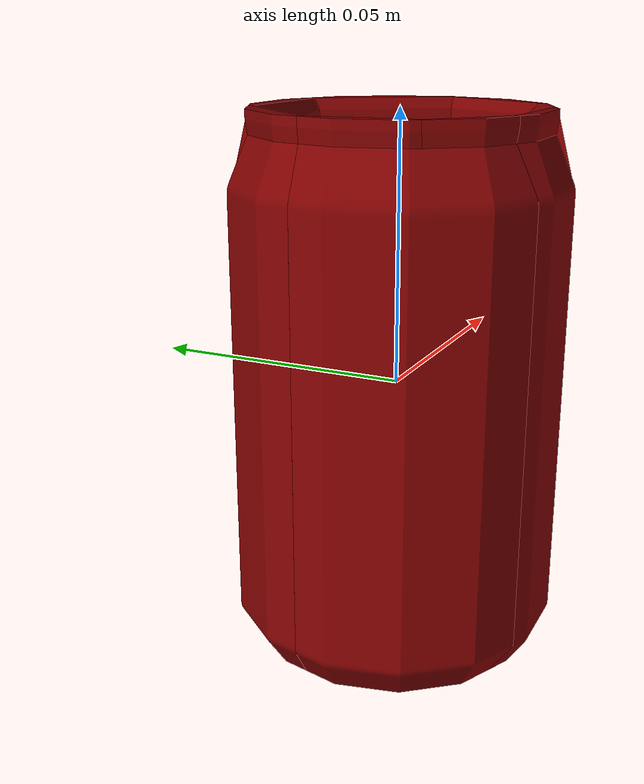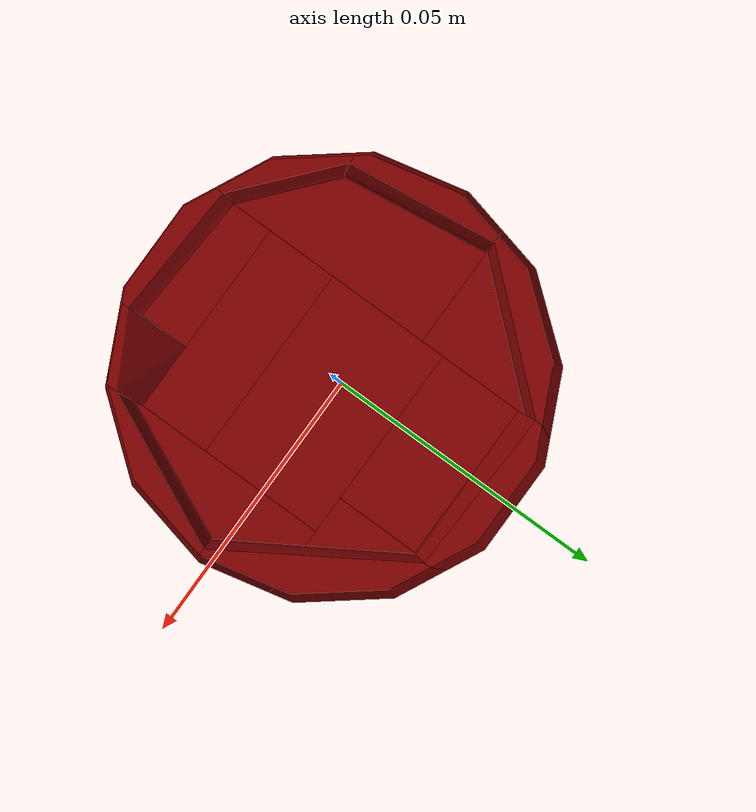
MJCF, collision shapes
<mujoco model="can_13">
  <asset>
    <mesh file="visual/model_normalized_0.obj" name="model_normalized_0_vis" scale="0.1 0.1 0.1" refquat="1.0 0.0 0.0 0.0"/>
    <texture type="2d" name="image0" file="visual/image0.png"/>
    <material name="Scene_-_Root.043" texture="image0" specular="0.5" shininess="0.25"/>
    <mesh file="collision/collision_mesh_collision_0.obj" name="can_collision_mesh_0" scale="0.1 0.1 0.1" refquat="1.0 0.0 0.0 0.0"/>
    <mesh file="collision/collision_mesh_collision_1.obj" name="can_collision_mesh_1" scale="0.1 0.1 0.1" refquat="1.0 0.0 0.0 0.0"/>
    <mesh file="collision/collision_mesh_collision_2.obj" name="can_collision_mesh_2" scale="0.1 0.1 0.1" refquat="1.0 0.0 0.0 0.0"/>
    <mesh file="collision/collision_mesh_collision_3.obj" name="can_collision_mesh_3" scale="0.1 0.1 0.1" refquat="1.0 0.0 0.0 0.0"/>
    <mesh file="collision/collision_mesh_collision_4.obj" name="can_collision_mesh_4" scale="0.1 0.1 0.1" refquat="1.0 0.0 0.0 0.0"/>
    <mesh file="collision/collision_mesh_collision_5.obj" name="can_collision_mesh_5" scale="0.1 0.1 0.1" refquat="1.0 0.0 0.0 0.0"/>
    <mesh file="collision/collision_mesh_collision_6.obj" name="can_collision_mesh_6" scale="0.1 0.1 0.1" refquat="1.0 0.0 0.0 0.0"/>
    <mesh file="collision/collision_mesh_collision_7.obj" name="can_collision_mesh_7" scale="0.1 0.1 0.1" refquat="1.0 0.0 0.0 0.0"/>
    <mesh file="collision/collision_mesh_collision_8.obj" name="can_collision_mesh_8" scale="0.1 0.1 0.1" refquat="1.0 0.0 0.0 0.0"/>
    <mesh file="collision/collision_mesh_collision_9.obj" name="can_collision_mesh_9" scale="0.1 0.1 0.1" refquat="1.0 0.0 0.0 0.0"/>
    <mesh file="collision/collision_mesh_collision_10.obj" name="can_collision_mesh_10" scale="0.1 0.1 0.1" refquat="1.0 0.0 0.0 0.0"/>
    <mesh file="collision/collision_mesh_collision_11.obj" name="can_collision_mesh_11" scale="0.1 0.1 0.1" refquat="1.0 0.0 0.0 0.0"/>
    <mesh file="collision/collision_mesh_collision_12.obj" name="can_collision_mesh_12" scale="0.1 0.1 0.1" refquat="1.0 0.0 0.0 0.0"/>
    <mesh file="collision/collision_mesh_collision_13.obj" name="can_collision_mesh_13" scale="0.1 0.1 0.1" refquat="1.0 0.0 0.0 0.0"/>
    <mesh file="collision/collision_mesh_collision_14.obj" name="can_collision_mesh_14" scale="0.1 0.1 0.1" refquat="1.0 0.0 0.0 0.0"/>
    <mesh file="collision/collision_mesh_collision_15.obj" name="can_collision_mesh_15" scale="0.1 0.1 0.1" refquat="1.0 0.0 0.0 0.0"/>
  </asset>
  <default>
    <default class="region">
      <geom group="1" conaffinity="0" contype="0" rgba="0 1 0 0"/>
    </default>
    <default class="collision">
      <geom group="0" rgba="0.5 0 0 0.5" density="1000.0"/>
    </default>
  </default>
  <worldbody>
    <body>
      <body name="object">
        <geom solimp="0.998 0.998 0.001" solref="0.001 1" density="100" friction="0.95 0.3 0.1" type="mesh" mesh="model_normalized_0_vis" conaffinity="0" contype="0" group="1" material="Scene_-_Root.043"/>
        <geom class="region" name="reg_bbox" type="box" pos="-6.630000000007464e-07 0.0 0.0" size="0.030434109 0.029671720000000002 0.05"/>
        <geom mesh="can_collision_mesh_0" type="mesh" class="collision"/>
        <geom mesh="can_collision_mesh_1" type="mesh" class="collision"/>
        <geom mesh="can_collision_mesh_2" type="mesh" class="collision"/>
        <geom mesh="can_collision_mesh_3" type="mesh" class="collision"/>
        <geom mesh="can_collision_mesh_4" type="mesh" class="collision"/>
        <geom mesh="can_collision_mesh_5" type="mesh" class="collision"/>
        <geom mesh="can_collision_mesh_6" type="mesh" class="collision"/>
        <geom mesh="can_collision_mesh_7" type="mesh" class="collision"/>
        <geom mesh="can_collision_mesh_8" type="mesh" class="collision"/>
        <geom mesh="can_collision_mesh_9" type="mesh" class="collision"/>
        <geom mesh="can_collision_mesh_10" type="mesh" class="collision"/>
        <geom mesh="can_collision_mesh_11" type="mesh" class="collision"/>
        <geom mesh="can_collision_mesh_12" type="mesh" class="collision"/>
        <geom mesh="can_collision_mesh_13" type="mesh" class="collision"/>
        <geom mesh="can_collision_mesh_14" type="mesh" class="collision"/>
        <geom mesh="can_collision_mesh_15" type="mesh" class="collision"/>
      </body>
    </body>
  </worldbody>
</mujoco>
